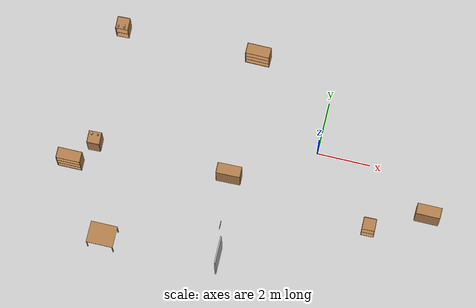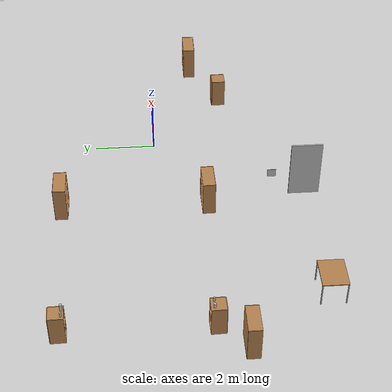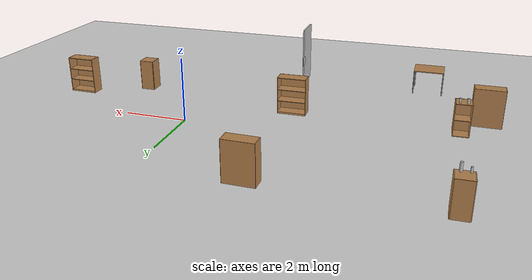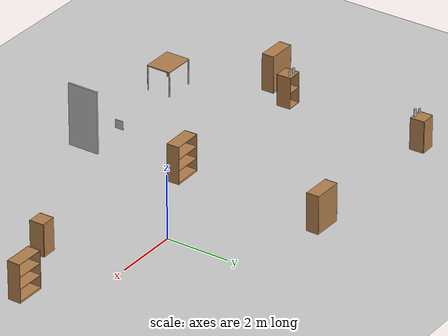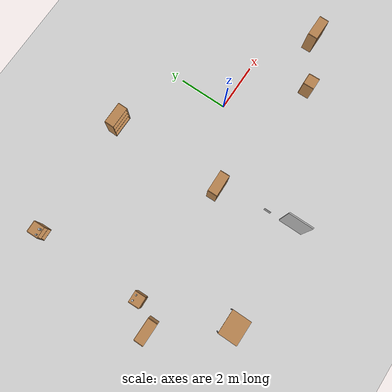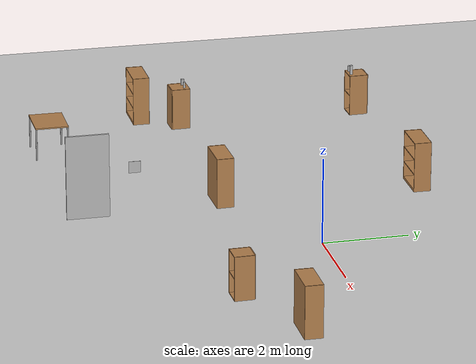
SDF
<sdf version="1.7">
 <world name="default">
  <model name="ground_plane">
   <static>1</static>
   <link name="link">
    <collision name="collision">
     <geometry><plane><normal>0 0 1</normal><size>100 100</size></plane></geometry>
     <surface><friction><ode><mu>100</mu><mu2>50</mu2></ode></friction></surface>
    </collision>
    <visual name="visual">
     <cast_shadows>0</cast_shadows>
     <geometry><plane><normal>0 0 1</normal><size>100 100</size></plane></geometry>
     <material>
      <script><uri>file://media/materials/scripts/gazebo.material</uri><name>Gazebo/Grey</name></script>
     </material>
    </visual>
    <velocity_decay><linear>0</linear><angular>0</angular></velocity_decay>
   </link>
  </model>
  <model name="cabinet">
   <static>0</static>
   <link name="cabinet_bottom_plate">
    <inertial>
     <pose>0 0 -1 0 -0 0</pose>
     <inertia><ixx>2.05</ixx><ixy>0</ixy><ixz>0</ixz><iyy>2.05</iyy><iyz>0</iyz><izz>2.05</izz></inertia>
     <mass>25</mass>
    </inertial>
    <collision name="cabinet_bottom_plate_geom">
     <pose>0 0 0.01 0 -0 0</pose>
     <geometry><box><size>0.45 0.45 0.02</size></box></geometry>
    </collision>
    <visual name="cabinet_bottom_plate_geom_visual">
     <pose>0 0 0.01 0 -0 0</pose>
     <geometry><box><size>0.45 0.45 0.02</size></box></geometry>
     <material>
      <script><uri>file://media/materials/scripts/gazebo.material</uri><name>Gazebo/Wood</name></script>
     </material>
    </visual>
    <collision name="cabinet_bottom_plate_geom_cabinet_back_plate">
     <pose>0.235 0 0.51 0 -0 0</pose>
     <geometry><box><size>0.02 0.45 1.02</size></box></geometry>
    </collision>
    <visual name="cabinet_bottom_plate_geom_cabinet_back_plate_visual">
     <pose>0.235 0 0.51 0 -0 0</pose>
     <geometry><box><size>0.02 0.45 1.02</size></box></geometry>
     <material>
      <script><uri>file://media/materials/scripts/gazebo.material</uri><name>Gazebo/Wood</name></script>
     </material>
    </visual>
    <collision name="cabinet_bottom_plate_geom_cabinet_left_plate">
     <pose>0 0.235 0.51 0 -0 0</pose>
     <geometry><box><size>0.45 0.02 1.02</size></box></geometry>
    </collision>
    <visual name="cabinet_bottom_plate_geom_cabinet_left_plate_visual">
     <pose>0 0.235 0.51 0 -0 0</pose>
     <geometry><box><size>0.45 0.02 1.02</size></box></geometry>
     <material>
      <script><uri>file://media/materials/scripts/gazebo.material</uri><name>Gazebo/Wood</name></script>
     </material>
    </visual>
    <collision name="cabinet_bottom_plate_geom_cabinet_middle_plate">
     <pose>0 0 0.51 0 -0 0</pose>
     <geometry><box><size>0.45 0.45 0.02</size></box></geometry>
    </collision>
    <visual name="cabinet_bottom_plate_geom_cabinet_middle_plate_visual">
     <pose>0 0 0.51 0 -0 0</pose>
     <geometry><box><size>0.45 0.45 0.02</size></box></geometry>
     <material>
      <script><uri>file://media/materials/scripts/gazebo.material</uri><name>Gazebo/Wood</name></script>
     </material>
    </visual>
    <collision name="cabinet_bottom_plate_geom_cabinet_right_plate">
     <pose>0 -0.235 0.51 0 -0 0</pose>
     <geometry><box><size>0.45 0.02 1.02</size></box></geometry>
    </collision>
    <visual name="cabinet_bottom_plate_geom_cabinet_right_plate_visual">
     <pose>0 -0.235 0.51 0 -0 0</pose>
     <geometry><box><size>0.45 0.02 1.02</size></box></geometry>
     <material>
      <script><uri>file://media/materials/scripts/gazebo.material</uri><name>Gazebo/Wood</name></script>
     </material>
    </visual>
    <collision name="cabinet_bottom_plate_geom_cabinet_top_plate">
     <pose>0 0 1.01 0 -0 0</pose>
     <geometry><box><size>0.45 0.45 0.02</size></box></geometry>
    </collision>
    <visual name="cabinet_bottom_plate_geom_cabinet_top_plate_visual">
     <pose>0 0 1.01 0 -0 0</pose>
     <geometry><box><size>0.45 0.45 0.02</size></box></geometry>
     <material>
      <script><uri>file://media/materials/scripts/gazebo.material</uri><name>Gazebo/Wood</name></script>
     </material>
    </visual>
    <velocity_decay><linear>0</linear><angular>0</angular></velocity_decay>
   </link>
   <pose>2.45493 -2.41902 -0 1e-06 -0 1.59125</pose>
  </model>
  <model name="bookshelf">
   <static>0</static>
   <link name="link">
    <inertial>
     <mass>1</mass>
     <inertia><ixx>1</ixx><ixy>0</ixy><ixz>0</ixz><iyy>1</iyy><iyz>0</iyz><izz>1</izz></inertia>
    </inertial>
    <collision name="back">
     <pose>0 0.005 0.6 0 -0 0</pose>
     <geometry><box><size>0.9 0.01 1.2</size></box></geometry>
    </collision>
    <visual name="visual1">
     <pose>0 0.005 0.6 0 -0 0</pose>
     <geometry><box><size>0.9 0.01 1.2</size></box></geometry>
     <material>
      <script><uri>file://media/materials/scripts/gazebo.material</uri><name>Gazebo/Wood</name></script>
     </material>
    </visual>
    <collision name="left_side">
     <pose>0.45 -0.195 0.6 0 -0 0</pose>
     <geometry><box><size>0.02 0.4 1.2</size></box></geometry>
    </collision>
    <visual name="visual2">
     <pose>0.45 -0.195 0.6 0 -0 0</pose>
     <geometry><box><size>0.02 0.4 1.2</size></box></geometry>
     <material>
      <script><uri>file://media/materials/scripts/gazebo.material</uri><name>Gazebo/Wood</name></script>
     </material>
    </visual>
    <collision name="right_side">
     <pose>-0.45 -0.195 0.6 0 -0 0</pose>
     <geometry><box><size>0.02 0.4 1.2</size></box></geometry>
    </collision>
    <visual name="visual3">
     <pose>-0.45 -0.195 0.6 0 -0 0</pose>
     <geometry><box><size>0.02 0.4 1.2</size></box></geometry>
     <material>
      <script><uri>file://media/materials/scripts/gazebo.material</uri><name>Gazebo/Wood</name></script>
     </material>
    </visual>
    <collision name="bottom">
     <pose>0 -0.195 0.03 0 -0 0</pose>
     <geometry><box><size>0.88 0.4 0.06</size></box></geometry>
    </collision>
    <visual name="visual4">
     <pose>0 -0.195 0.03 0 -0 0</pose>
     <geometry><box><size>0.88 0.4 0.06</size></box></geometry>
     <material>
      <script><uri>file://media/materials/scripts/gazebo.material</uri><name>Gazebo/Wood</name></script>
     </material>
    </visual>
    <collision name="top">
     <pose>0 -0.195 1.19 0 -0 0</pose>
     <geometry><box><size>0.88 0.4 0.02</size></box></geometry>
    </collision>
    <visual name="visual5">
     <pose>0 -0.195 1.19 0 -0 0</pose>
     <geometry><box><size>0.88 0.4 0.02</size></box></geometry>
     <material>
      <script><uri>file://media/materials/scripts/gazebo.material</uri><name>Gazebo/Wood</name></script>
     </material>
    </visual>
    <collision name="low_shelf">
     <pose>0 -0.195 0.43 0 -0 0</pose>
     <geometry><box><size>0.88 0.4 0.02</size></box></geometry>
    </collision>
    <visual name="visual6">
     <pose>0 -0.195 0.43 0 -0 0</pose>
     <geometry><box><size>0.88 0.4 0.02</size></box></geometry>
     <material>
      <script><uri>file://media/materials/scripts/gazebo.material</uri><name>Gazebo/Wood</name></script>
     </material>
    </visual>
    <collision name="high_shelf">
     <pose>0 -0.195 0.8 0 -0 0</pose>
     <geometry><box><size>0.88 0.4 0.02</size></box></geometry>
    </collision>
    <visual name="visual7">
     <pose>0 -0.195 0.8 0 -0 0</pose>
     <geometry><box><size>0.88 0.4 0.02</size></box></geometry>
     <material>
      <script><uri>file://media/materials/scripts/gazebo.material</uri><name>Gazebo/Wood</name></script>
     </material>
    </visual>
    <velocity_decay><linear>0</linear><angular>0</angular></velocity_decay>
   </link>
   <pose>-8.86577 -2.21666 0 -3.8e-05 -0 0</pose>
  </model>
  <model name="bookshelf_0">
   <static>0</static>
   <link name="link">
    <inertial>
     <mass>1</mass>
     <inertia><ixx>1</ixx><ixy>0</ixy><ixz>0</ixz><iyy>1</iyy><iyz>0</iyz><izz>1</izz></inertia>
    </inertial>
    <collision name="back">
     <pose>0 0.005 0.6 0 -0 0</pose>
     <geometry><box><size>0.9 0.01 1.2</size></box></geometry>
    </collision>
    <visual name="visual1">
     <pose>0 0.005 0.6 0 -0 0</pose>
     <geometry><box><size>0.9 0.01 1.2</size></box></geometry>
     <material>
      <script><uri>file://media/materials/scripts/gazebo.material</uri><name>Gazebo/Wood</name></script>
     </material>
    </visual>
    <collision name="left_side">
     <pose>0.45 -0.195 0.6 0 -0 0</pose>
     <geometry><box><size>0.02 0.4 1.2</size></box></geometry>
    </collision>
    <visual name="visual2">
     <pose>0.45 -0.195 0.6 0 -0 0</pose>
     <geometry><box><size>0.02 0.4 1.2</size></box></geometry>
     <material>
      <script><uri>file://media/materials/scripts/gazebo.material</uri><name>Gazebo/Wood</name></script>
     </material>
    </visual>
    <collision name="right_side">
     <pose>-0.45 -0.195 0.6 0 -0 0</pose>
     <geometry><box><size>0.02 0.4 1.2</size></box></geometry>
    </collision>
    <visual name="visual3">
     <pose>-0.45 -0.195 0.6 0 -0 0</pose>
     <geometry><box><size>0.02 0.4 1.2</size></box></geometry>
     <material>
      <script><uri>file://media/materials/scripts/gazebo.material</uri><name>Gazebo/Wood</name></script>
     </material>
    </visual>
    <collision name="bottom">
     <pose>0 -0.195 0.03 0 -0 0</pose>
     <geometry><box><size>0.88 0.4 0.06</size></box></geometry>
    </collision>
    <visual name="visual4">
     <pose>0 -0.195 0.03 0 -0 0</pose>
     <geometry><box><size>0.88 0.4 0.06</size></box></geometry>
     <material>
      <script><uri>file://media/materials/scripts/gazebo.material</uri><name>Gazebo/Wood</name></script>
     </material>
    </visual>
    <collision name="top">
     <pose>0 -0.195 1.19 0 -0 0</pose>
     <geometry><box><size>0.88 0.4 0.02</size></box></geometry>
    </collision>
    <visual name="visual5">
     <pose>0 -0.195 1.19 0 -0 0</pose>
     <geometry><box><size>0.88 0.4 0.02</size></box></geometry>
     <material>
      <script><uri>file://media/materials/scripts/gazebo.material</uri><name>Gazebo/Wood</name></script>
     </material>
    </visual>
    <collision name="low_shelf">
     <pose>0 -0.195 0.43 0 -0 0</pose>
     <geometry><box><size>0.88 0.4 0.02</size></box></geometry>
    </collision>
    <visual name="visual6">
     <pose>0 -0.195 0.43 0 -0 0</pose>
     <geometry><box><size>0.88 0.4 0.02</size></box></geometry>
     <material>
      <script><uri>file://media/materials/scripts/gazebo.material</uri><name>Gazebo/Wood</name></script>
     </material>
    </visual>
    <collision name="high_shelf">
     <pose>0 -0.195 0.8 0 -0 0</pose>
     <geometry><box><size>0.88 0.4 0.02</size></box></geometry>
    </collision>
    <visual name="visual7">
     <pose>0 -0.195 0.8 0 -0 0</pose>
     <geometry><box><size>0.88 0.4 0.02</size></box></geometry>
     <material>
      <script><uri>file://media/materials/scripts/gazebo.material</uri><name>Gazebo/Wood</name></script>
     </material>
    </visual>
    <velocity_decay><linear>0</linear><angular>0</angular></velocity_decay>
   </link>
   <pose>-3.00014 -1.82706 1e-06 -2.2e-05 2e-06 -3.1216</pose>
  </model>
  <model name="bookshelf_1">
   <static>0</static>
   <link name="link">
    <inertial>
     <mass>1</mass>
     <inertia><ixx>1</ixx><ixy>0</ixy><ixz>0</ixz><iyy>1</iyy><iyz>0</iyz><izz>1</izz></inertia>
    </inertial>
    <collision name="back">
     <pose>0 0.005 0.6 0 -0 0</pose>
     <geometry><box><size>0.9 0.01 1.2</size></box></geometry>
    </collision>
    <visual name="visual1">
     <pose>0 0.005 0.6 0 -0 0</pose>
     <geometry><box><size>0.9 0.01 1.2</size></box></geometry>
     <material>
      <script><uri>file://media/materials/scripts/gazebo.material</uri><name>Gazebo/Wood</name></script>
     </material>
    </visual>
    <collision name="left_side">
     <pose>0.45 -0.195 0.6 0 -0 0</pose>
     <geometry><box><size>0.02 0.4 1.2</size></box></geometry>
    </collision>
    <visual name="visual2">
     <pose>0.45 -0.195 0.6 0 -0 0</pose>
     <geometry><box><size>0.02 0.4 1.2</size></box></geometry>
     <material>
      <script><uri>file://media/materials/scripts/gazebo.material</uri><name>Gazebo/Wood</name></script>
     </material>
    </visual>
    <collision name="right_side">
     <pose>-0.45 -0.195 0.6 0 -0 0</pose>
     <geometry><box><size>0.02 0.4 1.2</size></box></geometry>
    </collision>
    <visual name="visual3">
     <pose>-0.45 -0.195 0.6 0 -0 0</pose>
     <geometry><box><size>0.02 0.4 1.2</size></box></geometry>
     <material>
      <script><uri>file://media/materials/scripts/gazebo.material</uri><name>Gazebo/Wood</name></script>
     </material>
    </visual>
    <collision name="bottom">
     <pose>0 -0.195 0.03 0 -0 0</pose>
     <geometry><box><size>0.88 0.4 0.06</size></box></geometry>
    </collision>
    <visual name="visual4">
     <pose>0 -0.195 0.03 0 -0 0</pose>
     <geometry><box><size>0.88 0.4 0.06</size></box></geometry>
     <material>
      <script><uri>file://media/materials/scripts/gazebo.material</uri><name>Gazebo/Wood</name></script>
     </material>
    </visual>
    <collision name="top">
     <pose>0 -0.195 1.19 0 -0 0</pose>
     <geometry><box><size>0.88 0.4 0.02</size></box></geometry>
    </collision>
    <visual name="visual5">
     <pose>0 -0.195 1.19 0 -0 0</pose>
     <geometry><box><size>0.88 0.4 0.02</size></box></geometry>
     <material>
      <script><uri>file://media/materials/scripts/gazebo.material</uri><name>Gazebo/Wood</name></script>
     </material>
    </visual>
    <collision name="low_shelf">
     <pose>0 -0.195 0.43 0 -0 0</pose>
     <geometry><box><size>0.88 0.4 0.02</size></box></geometry>
    </collision>
    <visual name="visual6">
     <pose>0 -0.195 0.43 0 -0 0</pose>
     <geometry><box><size>0.88 0.4 0.02</size></box></geometry>
     <material>
      <script><uri>file://media/materials/scripts/gazebo.material</uri><name>Gazebo/Wood</name></script>
     </material>
    </visual>
    <collision name="high_shelf">
     <pose>0 -0.195 0.8 0 -0 0</pose>
     <geometry><box><size>0.88 0.4 0.02</size></box></geometry>
    </collision>
    <visual name="visual7">
     <pose>0 -0.195 0.8 0 -0 0</pose>
     <geometry><box><size>0.88 0.4 0.02</size></box></geometry>
     <material>
      <script><uri>file://media/materials/scripts/gazebo.material</uri><name>Gazebo/Wood</name></script>
     </material>
    </visual>
    <velocity_decay><linear>0</linear><angular>0</angular></velocity_decay>
   </link>
   <pose>-2.97644 3.26394 0 -2.9e-05 -0 -0.010391</pose>
  </model>
  <model name="cabinet_2">
   <static>0</static>
   <link name="cabinet_bottom_plate">
    <inertial>
     <pose>0 0 -1 0 -0 0</pose>
     <inertia><ixx>2.05</ixx><ixy>0</ixy><ixz>0</ixz><iyy>2.05</iyy><iyz>0</iyz><izz>2.05</izz></inertia>
     <mass>25</mass>
    </inertial>
    <collision name="cabinet_bottom_plate_geom">
     <pose>0 0 0.01 0 -0 0</pose>
     <geometry><box><size>0.45 0.45 0.02</size></box></geometry>
    </collision>
    <visual name="cabinet_bottom_plate_geom_visual">
     <pose>0 0 0.01 0 -0 0</pose>
     <geometry><box><size>0.45 0.45 0.02</size></box></geometry>
     <material>
      <script><uri>file://media/materials/scripts/gazebo.material</uri><name>Gazebo/Wood</name></script>
     </material>
    </visual>
    <collision name="cabinet_bottom_plate_geom_cabinet_back_plate">
     <pose>0.235 0 0.51 0 -0 0</pose>
     <geometry><box><size>0.02 0.45 1.02</size></box></geometry>
    </collision>
    <visual name="cabinet_bottom_plate_geom_cabinet_back_plate_visual">
     <pose>0.235 0 0.51 0 -0 0</pose>
     <geometry><box><size>0.02 0.45 1.02</size></box></geometry>
     <material>
      <script><uri>file://media/materials/scripts/gazebo.material</uri><name>Gazebo/Wood</name></script>
     </material>
    </visual>
    <collision name="cabinet_bottom_plate_geom_cabinet_left_plate">
     <pose>0 0.235 0.51 0 -0 0</pose>
     <geometry><box><size>0.45 0.02 1.02</size></box></geometry>
    </collision>
    <visual name="cabinet_bottom_plate_geom_cabinet_left_plate_visual">
     <pose>0 0.235 0.51 0 -0 0</pose>
     <geometry><box><size>0.45 0.02 1.02</size></box></geometry>
     <material>
      <script><uri>file://media/materials/scripts/gazebo.material</uri><name>Gazebo/Wood</name></script>
     </material>
    </visual>
    <collision name="cabinet_bottom_plate_geom_cabinet_middle_plate">
     <pose>0 0 0.51 0 -0 0</pose>
     <geometry><box><size>0.45 0.45 0.02</size></box></geometry>
    </collision>
    <visual name="cabinet_bottom_plate_geom_cabinet_middle_plate_visual">
     <pose>0 0 0.51 0 -0 0</pose>
     <geometry><box><size>0.45 0.45 0.02</size></box></geometry>
     <material>
      <script><uri>file://media/materials/scripts/gazebo.material</uri><name>Gazebo/Wood</name></script>
     </material>
    </visual>
    <collision name="cabinet_bottom_plate_geom_cabinet_right_plate">
     <pose>0 -0.235 0.51 0 -0 0</pose>
     <geometry><box><size>0.45 0.02 1.02</size></box></geometry>
    </collision>
    <visual name="cabinet_bottom_plate_geom_cabinet_right_plate_visual">
     <pose>0 -0.235 0.51 0 -0 0</pose>
     <geometry><box><size>0.45 0.02 1.02</size></box></geometry>
     <material>
      <script><uri>file://media/materials/scripts/gazebo.material</uri><name>Gazebo/Wood</name></script>
     </material>
    </visual>
    <collision name="cabinet_bottom_plate_geom_cabinet_top_plate">
     <pose>0 0 1.01 0 -0 0</pose>
     <geometry><box><size>0.45 0.45 0.02</size></box></geometry>
    </collision>
    <visual name="cabinet_bottom_plate_geom_cabinet_top_plate_visual">
     <pose>0 0 1.01 0 -0 0</pose>
     <geometry><box><size>0.45 0.45 0.02</size></box></geometry>
     <material>
      <script><uri>file://media/materials/scripts/gazebo.material</uri><name>Gazebo/Wood</name></script>
     </material>
    </visual>
    <velocity_decay><linear>0</linear><angular>0</angular></velocity_decay>
   </link>
   <pose>-8.17053 3.00508 -0.004887 -5e-05 -0.000343 1.59268</pose>
  </model>
  <model name="cabinet_3">
   <static>0</static>
   <link name="cabinet_bottom_plate">
    <inertial>
     <pose>0 0 -1 0 -0 0</pose>
     <inertia><ixx>2.05</ixx><ixy>0</ixy><ixz>0</ixz><iyy>2.05</iyy><iyz>0</iyz><izz>2.05</izz></inertia>
     <mass>25</mass>
    </inertial>
    <collision name="cabinet_bottom_plate_geom">
     <pose>0 0 0.01 0 -0 0</pose>
     <geometry><box><size>0.45 0.45 0.02</size></box></geometry>
    </collision>
    <visual name="cabinet_bottom_plate_geom_visual">
     <pose>0 0 0.01 0 -0 0</pose>
     <geometry><box><size>0.45 0.45 0.02</size></box></geometry>
     <material>
      <script><uri>file://media/materials/scripts/gazebo.material</uri><name>Gazebo/Wood</name></script>
     </material>
    </visual>
    <collision name="cabinet_bottom_plate_geom_cabinet_back_plate">
     <pose>0.235 0 0.51 0 -0 0</pose>
     <geometry><box><size>0.02 0.45 1.02</size></box></geometry>
    </collision>
    <visual name="cabinet_bottom_plate_geom_cabinet_back_plate_visual">
     <pose>0.235 0 0.51 0 -0 0</pose>
     <geometry><box><size>0.02 0.45 1.02</size></box></geometry>
     <material>
      <script><uri>file://media/materials/scripts/gazebo.material</uri><name>Gazebo/Wood</name></script>
     </material>
    </visual>
    <collision name="cabinet_bottom_plate_geom_cabinet_left_plate">
     <pose>0 0.235 0.51 0 -0 0</pose>
     <geometry><box><size>0.45 0.02 1.02</size></box></geometry>
    </collision>
    <visual name="cabinet_bottom_plate_geom_cabinet_left_plate_visual">
     <pose>0 0.235 0.51 0 -0 0</pose>
     <geometry><box><size>0.45 0.02 1.02</size></box></geometry>
     <material>
      <script><uri>file://media/materials/scripts/gazebo.material</uri><name>Gazebo/Wood</name></script>
     </material>
    </visual>
    <collision name="cabinet_bottom_plate_geom_cabinet_middle_plate">
     <pose>0 0 0.51 0 -0 0</pose>
     <geometry><box><size>0.45 0.45 0.02</size></box></geometry>
    </collision>
    <visual name="cabinet_bottom_plate_geom_cabinet_middle_plate_visual">
     <pose>0 0 0.51 0 -0 0</pose>
     <geometry><box><size>0.45 0.45 0.02</size></box></geometry>
     <material>
      <script><uri>file://media/materials/scripts/gazebo.material</uri><name>Gazebo/Wood</name></script>
     </material>
    </visual>
    <collision name="cabinet_bottom_plate_geom_cabinet_right_plate">
     <pose>0 -0.235 0.51 0 -0 0</pose>
     <geometry><box><size>0.45 0.02 1.02</size></box></geometry>
    </collision>
    <visual name="cabinet_bottom_plate_geom_cabinet_right_plate_visual">
     <pose>0 -0.235 0.51 0 -0 0</pose>
     <geometry><box><size>0.45 0.02 1.02</size></box></geometry>
     <material>
      <script><uri>file://media/materials/scripts/gazebo.material</uri><name>Gazebo/Wood</name></script>
     </material>
    </visual>
    <collision name="cabinet_bottom_plate_geom_cabinet_top_plate">
     <pose>0 0 1.01 0 -0 0</pose>
     <geometry><box><size>0.45 0.45 0.02</size></box></geometry>
    </collision>
    <visual name="cabinet_bottom_plate_geom_cabinet_top_plate_visual">
     <pose>0 0 1.01 0 -0 0</pose>
     <geometry><box><size>0.45 0.45 0.02</size></box></geometry>
     <material>
      <script><uri>file://media/materials/scripts/gazebo.material</uri><name>Gazebo/Wood</name></script>
     </material>
    </visual>
    <velocity_decay><linear>0</linear><angular>0</angular></velocity_decay>
   </link>
   <pose>-8.14272 -1.51511 -0.004855 4.3e-05 -0.000174 -1.54295</pose>
  </model>
  <model name="bookshelf_4">
   <static>0</static>
   <link name="link">
    <inertial>
     <mass>1</mass>
     <inertia><ixx>1</ixx><ixy>0</ixy><ixz>0</ixz><iyy>1</iyy><iyz>0</iyz><izz>1</izz></inertia>
    </inertial>
    <collision name="back">
     <pose>0 0.005 0.6 0 -0 0</pose>
     <geometry><box><size>0.9 0.01 1.2</size></box></geometry>
    </collision>
    <visual name="visual1">
     <pose>0 0.005 0.6 0 -0 0</pose>
     <geometry><box><size>0.9 0.01 1.2</size></box></geometry>
     <material>
      <script><uri>file://media/materials/scripts/gazebo.material</uri><name>Gazebo/Wood</name></script>
     </material>
    </visual>
    <collision name="left_side">
     <pose>0.45 -0.195 0.6 0 -0 0</pose>
     <geometry><box><size>0.02 0.4 1.2</size></box></geometry>
    </collision>
    <visual name="visual2">
     <pose>0.45 -0.195 0.6 0 -0 0</pose>
     <geometry><box><size>0.02 0.4 1.2</size></box></geometry>
     <material>
      <script><uri>file://media/materials/scripts/gazebo.material</uri><name>Gazebo/Wood</name></script>
     </material>
    </visual>
    <collision name="right_side">
     <pose>-0.45 -0.195 0.6 0 -0 0</pose>
     <geometry><box><size>0.02 0.4 1.2</size></box></geometry>
    </collision>
    <visual name="visual3">
     <pose>-0.45 -0.195 0.6 0 -0 0</pose>
     <geometry><box><size>0.02 0.4 1.2</size></box></geometry>
     <material>
      <script><uri>file://media/materials/scripts/gazebo.material</uri><name>Gazebo/Wood</name></script>
     </material>
    </visual>
    <collision name="bottom">
     <pose>0 -0.195 0.03 0 -0 0</pose>
     <geometry><box><size>0.88 0.4 0.06</size></box></geometry>
    </collision>
    <visual name="visual4">
     <pose>0 -0.195 0.03 0 -0 0</pose>
     <geometry><box><size>0.88 0.4 0.06</size></box></geometry>
     <material>
      <script><uri>file://media/materials/scripts/gazebo.material</uri><name>Gazebo/Wood</name></script>
     </material>
    </visual>
    <collision name="top">
     <pose>0 -0.195 1.19 0 -0 0</pose>
     <geometry><box><size>0.88 0.4 0.02</size></box></geometry>
    </collision>
    <visual name="visual5">
     <pose>0 -0.195 1.19 0 -0 0</pose>
     <geometry><box><size>0.88 0.4 0.02</size></box></geometry>
     <material>
      <script><uri>file://media/materials/scripts/gazebo.material</uri><name>Gazebo/Wood</name></script>
     </material>
    </visual>
    <collision name="low_shelf">
     <pose>0 -0.195 0.43 0 -0 0</pose>
     <geometry><box><size>0.88 0.4 0.02</size></box></geometry>
    </collision>
    <visual name="visual6">
     <pose>0 -0.195 0.43 0 -0 0</pose>
     <geometry><box><size>0.88 0.4 0.02</size></box></geometry>
     <material>
      <script><uri>file://media/materials/scripts/gazebo.material</uri><name>Gazebo/Wood</name></script>
     </material>
    </visual>
    <collision name="high_shelf">
     <pose>0 -0.195 0.8 0 -0 0</pose>
     <geometry><box><size>0.88 0.4 0.02</size></box></geometry>
    </collision>
    <visual name="visual7">
     <pose>0 -0.195 0.8 0 -0 0</pose>
     <geometry><box><size>0.88 0.4 0.02</size></box></geometry>
     <material>
      <script><uri>file://media/materials/scripts/gazebo.material</uri><name>Gazebo/Wood</name></script>
     </material>
    </visual>
    <velocity_decay><linear>0</linear><angular>0</angular></velocity_decay>
   </link>
   <pose>4.47222 -1.66795 0 -2.5e-05 -0 3.13785</pose>
  </model>
  <model name="sprite">
   <static>0</static>
   <link name="link">
    <inertial>
     <mass>0.25</mass>
     <inertia><ixx>0</ixx><ixy>0</ixy><ixz>0</ixz><iyy>0</iyy><iyz>0</iyz><izz>0</izz></inertia>
    </inertial>
    <collision name="collision">
     <pose>0 0 0.075 -3.14159 -0 0</pose>
     <geometry><cylinder><radius>0.04</radius><length>0.15</length></cylinder></geometry>
    </collision>
    <visual name="visual">
     <pose>0 0 0.075 -3.14159 -0 0</pose>
     <geometry><cylinder><radius>0.04</radius><length>0.15</length></cylinder></geometry>
     <material>
      <script>
       <uri>model://sprite/material/scripts</uri>
       <uri>model://sprite/material/textures</uri>
       <name>Custom/sprite</name>
      </script>
     </material>
    </visual>
    <velocity_decay><linear>0</linear><angular>0</angular></velocity_decay>
   </link>
   <pose>-8.25408 -1.40549 1.01512 -2.7e-05 -0.000179 -0.171166</pose>
  </model>
  <model name="biscuits_pack">
   <static>0</static>
   <link name="link">
    <inertial>
     <mass>0.25</mass>
     <inertia><ixx>0</ixx><ixy>0</ixy><ixz>0</ixz><iyy>0</iyy><iyz>0</iyz><izz>0</izz></inertia>
    </inertial>
    <collision name="collision">
     <geometry><cylinder><radius>0.029</radius><length>0.15</length></cylinder></geometry>
    </collision>
    <visual name="visual">
     <geometry><cylinder><radius>0.029</radius><length>0.15</length></cylinder></geometry>
     <material>
      <script>
       <uri>model://biscuits_pack/material/scripts</uri>
       <uri>model://biscuits_pack/material/textures</uri>
       <name>Custom/biscuits_pack</name>
      </script>
     </material>
    </visual>
    <velocity_decay><linear>0</linear><angular>0</angular></velocity_decay>
   </link>
   <pose>-8.30226 2.85487 1.09006 0.000202 -0.000242 -0.284147</pose>
  </model>
  <model name="pringles2">
   <static>0</static>
   <link name="link">
    <inertial>
     <mass>0.25</mass>
     <inertia><ixx>0</ixx><ixy>0</ixy><ixz>0</ixz><iyy>0</iyy><iyz>0</iyz><izz>0</izz></inertia>
    </inertial>
    <collision name="collision">
     <pose>0 0 0.12 -3.14159 -0 0</pose>
     <geometry><cylinder><radius>0.04</radius><length>0.235</length></cylinder></geometry>
    </collision>
    <visual name="visual">
     <pose>0 0 0.12 -3.14159 -0 0</pose>
     <geometry><cylinder><radius>0.04</radius><length>0.235</length></cylinder></geometry>
     <material>
      <script>
       <uri>model://pringles2/material/scripts</uri>
       <uri>model://pringles2/material/textures</uri>
       <name>Custom/pringles2</name>
      </script>
     </material>
    </visual>
    <velocity_decay><linear>0</linear><angular>0</angular></velocity_decay>
   </link>
   <pose>-8.076 2.85107 1.01256 9.4e-05 0.000158 -1.15196</pose>
  </model>
  <model name="table_1">
   <link name="wallWithREEMphoto_body">
    <inertial>
     <mass>4</mass>
     <inertia><ixx>1</ixx><ixy>0</ixy><ixz>0</ixz><iyy>1</iyy><iyz>0</iyz><izz>1</izz></inertia>
    </inertial>
    <collision name="collision"><geometry><box><size>0.05 1 2</size></box></geometry></collision>
    <visual name="visual">
     <geometry><box><size>0.05 1 2</size></box></geometry>
     <material>
      <script>
       <uri>model://wall_with_reem_photo/material/scripts</uri>
       <uri>model://wall_with_reem_photo/material/textures</uri>
       <name>Custom/REEM_photo0</name>
      </script>
     </material>
    </visual>
   </link>
   <pose>-2.66221 -4.80329 0.999999 -2e-06 -3e-06 2.1e-05</pose>
  </model>
  <model name="table_2">
   <static>1</static>
   <link name="link">
    <collision name="surface">
     <pose>0 0 0.8 0 -0 0</pose>
     <geometry><box><size>1 0.8 0.03</size></box></geometry>
    </collision>
    <visual name="visual1">
     <pose>0 0 0.8 0 -0 0</pose>
     <geometry><box><size>1 0.8 0.03</size></box></geometry>
     <material>
      <script><uri>file://media/materials/scripts/gazebo.material</uri><name>Gazebo/Wood</name></script>
     </material>
    </visual>
    <collision name="front_left_leg">
     <pose>0.48 0.38 0.4 0 -0 0</pose>
     <geometry><cylinder><radius>0.02</radius><length>0.8</length></cylinder></geometry>
    </collision>
    <visual name="front_left_leg">
     <pose>0.48 0.38 0.4 0 -0 0</pose>
     <geometry><cylinder><radius>0.02</radius><length>0.8</length></cylinder></geometry>
     <material>
      <script><uri>file://media/materials/scripts/gazebo.material</uri><name>Gazebo/Grey</name></script>
     </material>
    </visual>
    <collision name="front_right_leg">
     <pose>0.48 -0.38 0.4 0 -0 0</pose>
     <geometry><cylinder><radius>0.02</radius><length>0.8</length></cylinder></geometry>
    </collision>
    <visual name="front_right_leg">
     <pose>0.48 -0.38 0.4 0 -0 0</pose>
     <geometry><cylinder><radius>0.02</radius><length>0.8</length></cylinder></geometry>
     <material>
      <script><uri>file://media/materials/scripts/gazebo.material</uri><name>Gazebo/Grey</name></script>
     </material>
    </visual>
    <collision name="back_right_leg">
     <pose>-0.48 -0.38 0.4 0 -0 0</pose>
     <geometry><cylinder><radius>0.02</radius><length>0.8</length></cylinder></geometry>
    </collision>
    <visual name="back_right_leg">
     <pose>-0.48 -0.38 0.4 0 -0 0</pose>
     <geometry><cylinder><radius>0.02</radius><length>0.8</length></cylinder></geometry>
     <material>
      <script><uri>file://media/materials/scripts/gazebo.material</uri><name>Gazebo/Grey</name></script>
     </material>
    </visual>
    <collision name="back_left_leg">
     <pose>-0.48 0.38 0.4 0 -0 0</pose>
     <geometry><cylinder><radius>0.02</radius><length>0.8</length></cylinder></geometry>
    </collision>
    <visual name="back_left_leg">
     <pose>-0.48 0.38 0.4 0 -0 0</pose>
     <geometry><cylinder><radius>0.02</radius><length>0.8</length></cylinder></geometry>
     <material>
      <script><uri>file://media/materials/scripts/gazebo.material</uri><name>Gazebo/Grey</name></script>
     </material>
    </visual>
    <velocity_decay><linear>0</linear><angular>0</angular></velocity_decay>
   </link>
   <pose>-7.00742 -4.96079 0 0 -0 0</pose>
  </model>
  <model name="coke_can_slim">
   <static>0</static>
   <link name="link">
    <inertial>
     <mass>0.15</mass>
     <inertia><ixx>2079.98</ixx><ixy>0</ixy><ixz>0</ixz><iyy>2079.98</iyy><iyz>0</iyz><izz>419.21</izz></inertia>
    </inertial>
    <collision name="collision">
     <geometry><cylinder><radius>0.029</radius><length>0.15</length></cylinder></geometry>
    </collision>
    <visual name="visual">
     <geometry><cylinder><radius>0.029</radius><length>0.15</length></cylinder></geometry>
     <material>
      <script>
       <uri>model://coke_can_slim/material/scripts</uri>
       <uri>model://coke_can_slim/material/textures</uri>
       <name>Custom/coke_can_slim</name>
      </script>
     </material>
    </visual>
    <velocity_decay><linear>0</linear><angular>0</angular></velocity_decay>
   </link>
   <pose>-8.02759 -1.40599 1.09013 -0.000187 -0.000183 -0.792389</pose>
  </model>
  <model name="aruco_marker_0">
   <static>1</static>
   <link name="link">
    <visual name="visual">
     <geometry><box><size>0.275 0.275 0.01</size></box></geometry>
     <material>
      <script>
       <uri>model://aruco_marker_0/materials/scripts</uri>
       <uri>model://aruco_marker_0/materials/textures</uri>
       <name>ArucoMarker/ID0</name>
      </script>
     </material>
    </visual>
   </link>
   <pose>-2.84697 -3.68003 1.07283 0 -1.5601 0</pose>
  </model>
 </world>
</sdf>
